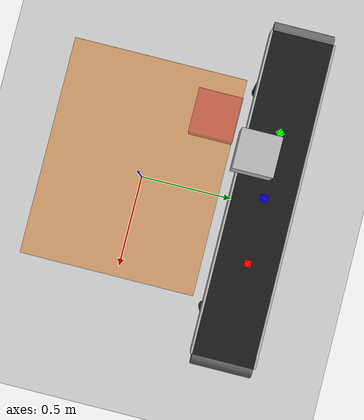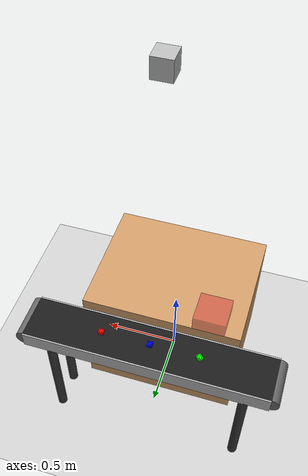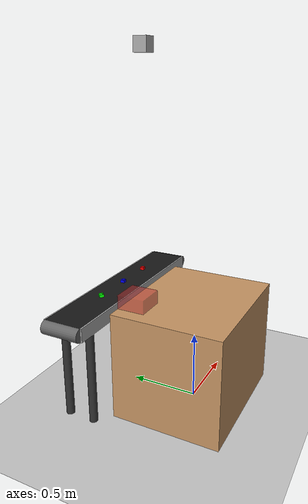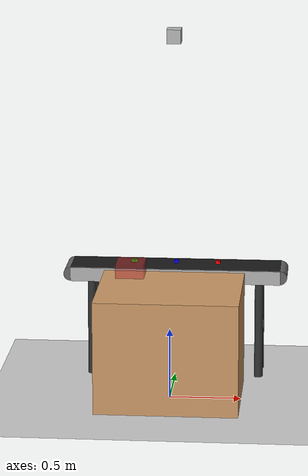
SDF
<?xml version="1.0" ?>
<sdf version="1.7">
  <world name="conveyor_world">
    <physics name="1ms" type="ignored">
      <max_step_size>0.001</max_step_size>
      <real_time_factor>1.0</real_time_factor>
    </physics>

    <plugin filename="gz-sim-physics-system" name="gz::sim::systems::Physics"/>
    <plugin filename="gz-sim-user-commands-system" name="gz::sim::systems::UserCommands"/>
    <plugin filename="gz-sim-scene-broadcaster-system" name="gz::sim::systems::SceneBroadcaster"/>
    <plugin filename="gz-sim-sensors-system" name="gz::sim::systems::Sensors">
      <render_engine>ogre</render_engine>
    </plugin>
    <plugin filename="gz-sim-pose-publisher-system" name="gz::sim::systems::PosePublisher">
      <publish_link_pose>true</publish_link_pose>
      <publish_model_pose>true</publish_model_pose>
      <publish_nested_model_pose>true</publish_nested_model_pose>

    </plugin>

    <!-- Lighting -->
    <light type="directional" name="sun_dir">
      <cast_shadows>true</cast_shadows>
      <pose>0 0 10 0 0 0</pose>
      <diffuse>0.8 0.8 0.8 1</diffuse>
      <specular>0.2 0.2 0.2 1</specular>
      <direction>-0.5 0.1 -0.9</direction>
    </light>

    <include>
      <uri>https://fuel.gazebosim.org/1.0/OpenRobotics/models/Ground Plane</uri>
    </include>

    <scene>
      <ambient>0.8 0.8 0.8 1.0</ambient>
      <background>0.5 0.5 0.5 1.0</background>
      <shadows>true</shadows>
    </scene>

    <!-- Main Table (Height 0.8m) -->
    <!-- Position: Center at 0,0 -->
    <model name="table">
      <static>true</static>
      <pose>0 0 0.4 0 0 0</pose>
      <link name="link">
        <collision name="collision">
          <geometry>
            <box>
              <size>1.0 0.8 0.8</size>
            </box>
          </geometry>
        </collision>
        <visual name="visual">
          <geometry>
            <box>
              <size>1.0 0.8 0.8</size>
            </box>
          </geometry>
          <material>
            <ambient>0.8 0.6 0.4 1</ambient>
            <diffuse>0.8 0.6 0.4 1</diffuse>
            <specular>0.1 0.1 0.1 1</specular>
          </material>
        </visual>
      </link>
    </model>

    <!-- Detailed Conveyor Model -->
    <!-- Width: Reduced to 0.3m -->
    <!-- Position: Closer to table. Table End=0.4. Gap=0.05. Start=0.45. Center=0.6. -->
    <model name="conveyor">
      <static>true</static>
      <pose>0 0.6 0 0 0 0</pose>

      <!-- Belt Surface (Black) -->
      <!-- Size: 1.5 x 0.28 x 0.02. -->
      <link name="belt">
        <pose>0 0 0.79 0 0 0</pose>
        <collision name="collision">
          <geometry><box><size>1.5 0.28 0.02</size></box></geometry>
          <surface>
            <friction>
              <ode>
                <mu>1.0</mu>
                <mu2>1.0</mu2>
              </ode>
            </friction>
          </surface>
        </collision>
        <visual name="visual">
          <geometry><box><size>1.5 0.28 0.02</size></box></geometry>
          <material>
            <ambient>0.1 0.1 0.1 1</ambient>
            <diffuse>0.1 0.1 0.1 1</diffuse> <!-- Black -->
          </material>
        </visual>
      </link>

      <!-- Side Rails (Silver) -->
      <!-- Size: 1.5 x 0.01 x 0.1. Position: Y offset +/- 0.145 (edge) -->
      <link name="rail_left">
        <pose>0 0.145 0.75 0 0 0</pose>
        <visual name="visual">
          <geometry><box><size>1.5 0.01 0.1</size></box></geometry>
          <material>
            <ambient>0.7 0.7 0.7 1</ambient>
            <diffuse>0.7 0.7 0.7 1</diffuse> <!-- Silver -->
          </material>
        </visual>
        <collision name="collision"><geometry><box><size>1.5 0.01 0.1</size></box></geometry></collision>
      </link>

      <link name="rail_right">
        <pose>0 -0.145 0.75 0 0 0</pose>
        <visual name="visual">
            <geometry><box><size>1.5 0.01 0.1</size></box></geometry>
            <material>
                <ambient>0.7 0.7 0.7 1</ambient>
                <diffuse>0.7 0.7 0.7 1</diffuse>
            </material>
        </visual>
        <collision name="collision"><geometry><box><size>1.5 0.01 0.1</size></box></geometry></collision>
      </link>

      <!-- Rollers (Grey Cylinders at ends) -->
      <!-- Radius 0.05, Length 0.28. -->
      <link name="roller_front">
        <pose>0.75 0 0.75 1.5708 0 0</pose> <!-- Rotated to horizontal -->
        <visual name="visual">
            <geometry><cylinder><radius>0.05</radius><length>0.28</length></cylinder></geometry>
            <material><ambient>0.4 0.4 0.4 1</ambient><diffuse>0.4 0.4 0.4 1</diffuse></material>
        </visual>
      </link>
      <link name="roller_back">
        <pose>-0.75 0 0.75 1.5708 0 0</pose>
        <visual name="visual">
            <geometry><cylinder><radius>0.05</radius><length>0.28</length></cylinder></geometry>
            <material><ambient>0.4 0.4 0.4 1</ambient><diffuse>0.4 0.4 0.4 1</diffuse></material>
        </visual>
      </link>

      <!-- Legs (Stand) -->
      <link name="leg_1">
        <pose>0.6 0.1 0.35 0 0 0</pose>
        <visual name="visual">
            <geometry><cylinder><radius>0.03</radius><length>0.7</length></cylinder></geometry>
            <material><ambient>0.2 0.2 0.2 1</ambient><diffuse>0.2 0.2 0.2 1</diffuse></material>
        </visual>
        <collision name="collision"><geometry><cylinder><radius>0.03</radius><length>0.7</length></cylinder></geometry></collision>
      </link>
      <link name="leg_2">
        <pose>0.6 -0.1 0.35 0 0 0</pose>
        <visual name="visual">
            <geometry><cylinder><radius>0.03</radius><length>0.7</length></cylinder></geometry>
            <material><ambient>0.2 0.2 0.2 1</ambient><diffuse>0.2 0.2 0.2 1</diffuse></material>
        </visual>
        <collision name="collision"><geometry><cylinder><radius>0.03</radius><length>0.7</length></cylinder></geometry></collision>
      </link>
      <link name="leg_3">
        <pose>-0.6 0.1 0.35 0 0 0</pose>
        <visual name="visual">
            <geometry><cylinder><radius>0.03</radius><length>0.7</length></cylinder></geometry>
            <material><ambient>0.2 0.2 0.2 1</ambient><diffuse>0.2 0.2 0.2 1</diffuse></material>
        </visual>
        <collision name="collision"><geometry><cylinder><radius>0.03</radius><length>0.7</length></cylinder></geometry></collision>
      </link>
      <link name="leg_4">
        <pose>-0.6 -0.1 0.35 0 0 0</pose>
        <visual name="visual">
            <geometry><cylinder><radius>0.03</radius><length>0.7</length></cylinder></geometry>
            <material><ambient>0.2 0.2 0.2 1</ambient><diffuse>0.2 0.2 0.2 1</diffuse></material>
        </visual>
        <collision name="collision"><geometry><cylinder><radius>0.03</radius><length>0.7</length></cylinder></geometry></collision>
      </link>

      <plugin filename="gz-sim-conveyor-belt-system" name="gz::sim::systems::ConveyorBelt">
          <belt_velocity>0.2</belt_velocity>
          <belt_link>belt</belt_link>
          <topic>/conveyor_belt</topic>
      </plugin>
    </model>

    <!-- Sorting Bin (Left on Table for now) -->
    <model name="bin">
        <pose>-0.3 0.3 0.85 0 0 0</pose>
        <static>true</static>
        <link name="link">
            <visual name="visual">
                <geometry><box><size>0.2 0.2 0.1</size></box></geometry>
                <material>
                    <ambient>0.3 0.3 0.3 1</ambient>
                    <diffuse>0.8 0.2 0.2 0.5</diffuse>
                </material>
            </visual>
            <collision name="base">
                <pose>0 0 -0.045 0 0 0</pose>
                <geometry><box><size>0.2 0.2 0.01</size></box></geometry>
            </collision>
            <collision name="wall1">
                <pose>0.095 0 0 0 0 0</pose>
                <geometry><box><size>0.01 0.2 0.1</size></box></geometry>
            </collision>
            <collision name="wall2">
                <pose>-0.095 0 0 0 0 0</pose>
                <geometry><box><size>0.01 0.2 0.1</size></box></geometry>
            </collision>
            <collision name="wall3">
                <pose>0 0.095 0 0 0 0</pose>
                <geometry><box><size>0.2 0.01 0.1</size></box></geometry>
            </collision>
            <collision name="wall4">
                <pose>0 -0.095 0 0 0 0</pose>
                <geometry><box><size>0.2 0.01 0.1</size></box></geometry>
            </collision>
        </link>
    </model>

    <!-- Lego Bricks (Relocated to Conveyor Y=0.6) -->
    <model name="lego_red">
      <pose>0.3 0.6 0.82 0 0 0</pose> <!-- Y changed to 0.6 -->
      <link name="link">
        <inertial>
            <mass>0.01</mass>
            <inertia><ixx>0.00001</ixx><iyy>0.00001</iyy><izz>0.00001</izz></inertia>
        </inertial>
        <collision name="collision">
          <geometry>
            <box><size>0.032 0.032 0.02</size></box>
          </geometry>
        </collision>
        <visual name="base_visual">
          <geometry>
            <box><size>0.032 0.032 0.02</size></box>
          </geometry>
          <material>
            <ambient>1 0 0 1</ambient>
            <diffuse>1 0 0 1</diffuse>
          </material>
        </visual>
        <visual name="stud1"><pose>0.008 0.008 0.012 0 0 0</pose><geometry><cylinder><radius>0.0024</radius><length>0.004</length></cylinder></geometry><material><ambient>1 0 0 1</ambient><diffuse>1 0 0 1</diffuse></material></visual>
        <visual name="stud2"><pose>0.008 -0.008 0.012 0 0 0</pose><geometry><cylinder><radius>0.0024</radius><length>0.004</length></cylinder></geometry><material><ambient>1 0 0 1</ambient><diffuse>1 0 0 1</diffuse></material></visual>
        <visual name="stud3"><pose>-0.008 0.008 0.012 0 0 0</pose><geometry><cylinder><radius>0.0024</radius><length>0.004</length></cylinder></geometry><material><ambient>1 0 0 1</ambient><diffuse>1 0 0 1</diffuse></material></visual>
        <visual name="stud4"><pose>-0.008 -0.008 0.012 0 0 0</pose><geometry><cylinder><radius>0.0024</radius><length>0.004</length></cylinder></geometry><material><ambient>1 0 0 1</ambient><diffuse>1 0 0 1</diffuse></material></visual>
      </link>
    </model>

    <model name="lego_blue">
      <pose>0.0 0.6 0.82 0 0 0</pose> <!-- Y changed to 0.6 -->
      <link name="link">
        <inertial>
            <mass>0.01</mass>
            <inertia><ixx>0.00001</ixx><iyy>0.00001</iyy><izz>0.00001</izz></inertia>
        </inertial>
        <collision name="collision">
          <geometry>
            <box><size>0.032 0.032 0.02</size></box>
          </geometry>
        </collision>
        <visual name="base_visual">
          <geometry>
            <box><size>0.032 0.032 0.02</size></box>
          </geometry>
          <material>
            <ambient>0 0 1 1</ambient>
            <diffuse>0 0 1 1</diffuse>
          </material>
        </visual>
        <visual name="stud1"><pose>0.008 0.008 0.012 0 0 0</pose><geometry><cylinder><radius>0.0024</radius><length>0.004</length></cylinder></geometry><material><ambient>0 0 1 1</ambient><diffuse>0 0 1 1</diffuse></material></visual>
        <visual name="stud2"><pose>0.008 -0.008 0.012 0 0 0</pose><geometry><cylinder><radius>0.0024</radius><length>0.004</length></cylinder></geometry><material><ambient>0 0 1 1</ambient><diffuse>0 0 1 1</diffuse></material></visual>
        <visual name="stud3"><pose>-0.008 0.008 0.012 0 0 0</pose><geometry><cylinder><radius>0.0024</radius><length>0.004</length></cylinder></geometry><material><ambient>0 0 1 1</ambient><diffuse>0 0 1 1</diffuse></material></visual>
        <visual name="stud4"><pose>-0.008 -0.008 0.012 0 0 0</pose><geometry><cylinder><radius>0.0024</radius><length>0.004</length></cylinder></geometry><material><ambient>0 0 1 1</ambient><diffuse>0 0 1 1</diffuse></material></visual>
      </link>
    </model>

    <model name="lego_green">
      <pose>-0.3 0.6 0.82 0 0 0.785</pose> <!-- Y changed to 0.6 -->
      <link name="link">
        <inertial>
            <mass>0.01</mass>
            <inertia><ixx>0.00001</ixx><iyy>0.00001</iyy><izz>0.00001</izz></inertia>
        </inertial>
        <collision name="collision">
          <geometry>
            <box><size>0.032 0.032 0.02</size></box>
          </geometry>
        </collision>
        <visual name="base_visual">
          <geometry>
            <box><size>0.032 0.032 0.02</size></box>
          </geometry>
          <material>
            <ambient>0 1 0 1</ambient>
            <diffuse>0 1 0 1</diffuse>
          </material>
        </visual>
        <visual name="stud1"><pose>0.008 0.008 0.012 0 0 0</pose><geometry><cylinder><radius>0.0024</radius><length>0.004</length></cylinder></geometry><material><ambient>0 1 0 1</ambient><diffuse>0 1 0 1</diffuse></material></visual>
        <visual name="stud2"><pose>0.008 -0.008 0.012 0 0 0</pose><geometry><cylinder><radius>0.0024</radius><length>0.004</length></cylinder></geometry><material><ambient>0 1 0 1</ambient><diffuse>0 1 0 1</diffuse></material></visual>
        <visual name="stud3"><pose>-0.008 0.008 0.012 0 0 0</pose><geometry><cylinder><radius>0.0024</radius><length>0.004</length></cylinder></geometry><material><ambient>0 1 0 1</ambient><diffuse>0 1 0 1</diffuse></material></visual>
        <visual name="stud4"><pose>-0.008 -0.008 0.012 0 0 0</pose><geometry><cylinder><radius>0.0024</radius><length>0.004</length></cylinder></geometry><material><ambient>0 1 0 1</ambient><diffuse>0 1 0 1</diffuse></material></visual>
      </link>
    </model>

    <!-- GUI Camera (Oblique View) -->
    <gui fullscreen='0'>
      <camera name='user_camera'>
        <pose>2.0 -2.0 2.5 0 0.6 2.356</pose>
        <view_controller>orbit</view_controller>
        <projection_type>perspective</projection_type>
      </camera>
    </gui>

    <!-- Overhead Camera (Centered between table and conveyor) -->
    <!-- Table Y=0, Conveyor Y=0.85 -> Center approx 0.4 -->
    <model name="camera">
      <pose>0.0 0.4 2.5 0 1.5708 0</pose>
      <link name="link">
        <inertial>
          <mass>0.1</mass>
          <inertia>
            <ixx>0.000166667</ixx>
            <iyy>0.000166667</iyy>
            <izz>0.000166667</izz>
          </inertia>
        </inertial>
        <collision name="collision">
          <geometry>
            <box>
              <size>0.1 0.1 0.1</size>
            </box>
          </geometry>
        </collision>
        <visual name="visual">
          <geometry>
            <box>
              <size>0.1 0.1 0.1</size>
            </box>
          </geometry>
        </visual>
        <!-- RGB Sensor -->
        <sensor name="camera_rgb" type="camera">
          <camera>
            <horizontal_fov>1.1</horizontal_fov>
            <image>
              <width>640</width>
              <height>480</height>
              <format>R8G8B8</format>
            </image>
            <clip>
              <near>0.1</near>
              <far>10.0</far>
            </clip>
          </camera>
          <always_on>1</always_on>
          <update_rate>30</update_rate>
          <visualize>true</visualize>
          <topic>camera/image_raw</topic>
        </sensor>

        <!-- Depth Sensor -->
        <sensor name="camera_depth" type="depth_camera">
          <camera>
            <horizontal_fov>1.1</horizontal_fov>
            <image>
              <width>640</width>
              <height>480</height>
              <format>R_FLOAT32</format>
            </image>
            <clip>
              <near>0.1</near>
              <far>10.0</far>
            </clip>
          </camera>
          <always_on>1</always_on>
          <update_rate>30</update_rate>
          <visualize>true</visualize>
          <topic>camera/depth_image</topic>
        </sensor>
      </link>
      <static>true</static>
    </model>

  </world>
</sdf>
